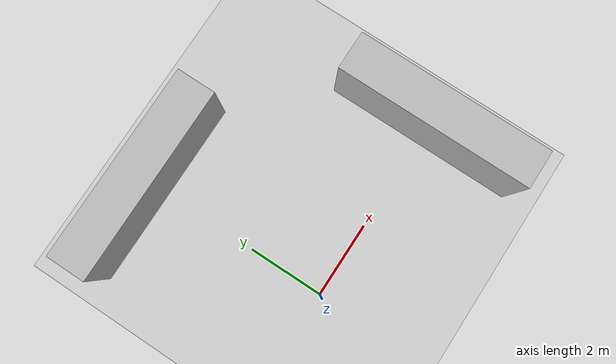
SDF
<?xml version="1.0" ?>
<sdf version="1.9">
  <world name="lio_test_world">

    <physics name="1ms" type="ignored">
      <max_step_size>0.001</max_step_size>
      <real_time_factor>1.0</real_time_factor>
    </physics>

    <plugin filename="gz-sim-physics-system" name="gz::sim::systems::Physics"/>

    <plugin filename="gz-sim-sensors-system" name="gz::sim::systems::Sensors"/>

    <plugin filename="gz-sim-imu-system" name="gz::sim::systems::Imu"/>

    <plugin filename="gz-sim-scene-broadcaster-system" name="gz::sim::systems::SceneBroadcaster"/>
    <plugin filename="gz-sim-user-commands-system" name="gz::sim::systems::UserCommands"/>

    <light type="directional" name="sun">
      <cast_shadows>true</cast_shadows>
      <pose>0 0 10 0 0 0</pose>
      <diffuse>0.8 0.8 0.8 1</diffuse>
      <specular>0.2 0.2 0.2 1</specular>
    </light>

    <model name="ground_plane">
      <static>true</static>
      <link name="link">
        <collision name="collision">
          <geometry><plane><normal>0 0 1</normal></plane></geometry>
        </collision>
        <visual name="visual">
          <geometry><plane><normal>0 0 1</normal><size>100 100</size></plane></geometry>
          <material><ambient>0.8 0.8 0.8 1</ambient></material>
        </visual>
      </link>
    </model>

    <model name="wall_1">
      <static>true</static>
      <pose>5 0 1 0 0 0</pose>
      <link name="link">
        <visual name="v"><geometry><box><size>1 5 2</size></box></geometry></visual>
        <collision name="c"><geometry><box><size>1 5 2</size></box></geometry></collision>
      </link>
    </model>

    <model name="wall_2">
      <static>true</static>
      <pose>0 5 1 0 0 0</pose>
      <link name="link">
        <visual name="v"><geometry><box><size>5 1 2</size></box></geometry></visual>
        <collision name="c"><geometry><box><size>5 1 2</size></box></geometry></collision>
      </link>
    </model>

  </world>
</sdf>
